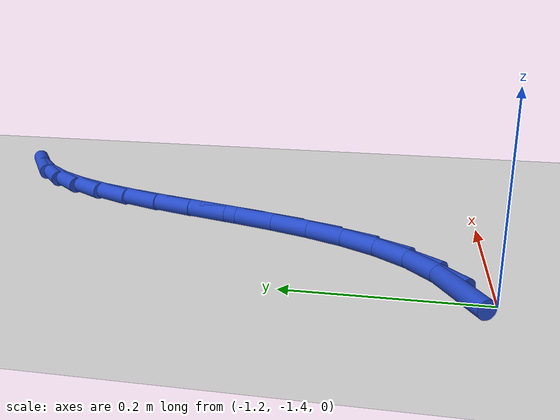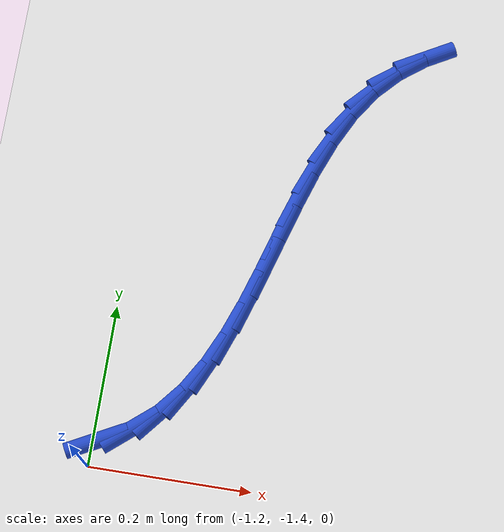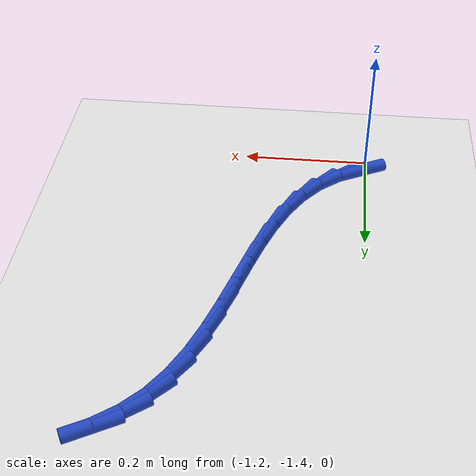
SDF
<sdf version="1.6">
 <world name="default">
  <model name="ground_plane">
   <static>1</static>
   <link name="link">
    <collision name="collision">
     <geometry><plane><normal>0 0 1</normal><size>100 100</size></plane></geometry>
     <surface><friction><ode><mu>100</mu><mu2>50</mu2></ode></friction></surface>
    </collision>
    <visual name="visual">
     <cast_shadows>0</cast_shadows>
     <geometry><plane><normal>0 0 1</normal><size>100 100</size></plane></geometry>
     <material>
      <script><uri>file://media/materials/scripts/gazebo.material</uri><name>Gazebo/WhiteGlow</name></script>
     </material>
    </visual>
   </link>
  </model>
  <model name="line">
   <link name="link_134">
    <pose>-1.1935066883050682 -1.3684177187189428 0.01 0 1.57 0.4818829151417726</pose>
    <collision name="collision">
     <geometry><cylinder><radius>0.01</radius><length>0.08</length></cylinder></geometry>
    </collision>
    <visual name="visual">
     <material>
      <script><name>Gazebo/Blue</name><uri>file://media/materials/scripts/gazebo.material</uri></script>
     </material>
     <geometry><cylinder><radius>0.01</radius><length>0.08</length></cylinder></geometry>
    </visual>
   </link>
   <link name="link_135">
    <pose>-1.156145744813751 -1.3488777043836597 0.01 0 1.57 0.6969530388841583</pose>
    <collision name="collision">
     <geometry><cylinder><radius>0.01</radius><length>0.08</length></cylinder></geometry>
    </collision>
    <visual name="visual">
     <material>
      <script><name>Gazebo/Blue</name><uri>file://media/materials/scripts/gazebo.material</uri></script>
     </material>
     <geometry><cylinder><radius>0.01</radius><length>0.08</length></cylinder></geometry>
    </visual>
   </link>
   <link name="link_136">
    <pose>-1.1247849051375607 -1.3226257627925606 0.01 0 1.57 0.8854524692807012</pose>
    <collision name="collision">
     <geometry><cylinder><radius>0.01</radius><length>0.08</length></cylinder></geometry>
    </collision>
    <visual name="visual">
     <material>
      <script><name>Gazebo/Blue</name><uri>file://media/materials/scripts/gazebo.material</uri></script>
     </material>
     <geometry><cylinder><radius>0.01</radius><length>0.08</length></cylinder></geometry>
    </visual>
   </link>
   <link name="link_137">
    <pose>-1.0986229323773369 -1.2906248450878235 0.01 0 1.57 1.0343437340253292</pose>
    <collision name="collision">
     <geometry><cylinder><radius>0.01</radius><length>0.08</length></cylinder></geometry>
    </collision>
    <visual name="visual">
     <material>
      <script><name>Gazebo/Blue</name><uri>file://media/materials/scripts/gazebo.material</uri></script>
     </material>
     <geometry><cylinder><radius>0.01</radius><length>0.08</length></cylinder></geometry>
    </visual>
   </link>
   <link name="link_138">
    <pose>-1.076775607830689 -1.253883050632244 0.01 0 1.57 1.1437724363634296</pose>
    <collision name="collision">
     <geometry><cylinder><radius>0.01</radius><length>0.08</length></cylinder></geometry>
    </collision>
    <visual name="visual">
     <material>
      <script><name>Gazebo/Blue</name><uri>file://media/materials/scripts/gazebo.material</uri></script>
     </material>
     <geometry><cylinder><radius>0.01</radius><length>0.08</length></cylinder></geometry>
    </visual>
   </link>
   <link name="link_139">
    <pose>-1.0583587127952279 -1.213408478788615 0.01 0 1.57 1.2187199494065142</pose>
    <collision name="collision">
     <geometry><cylinder><radius>0.01</radius><length>0.08</length></cylinder></geometry>
    </collision>
    <visual name="visual">
     <material>
      <script><name>Gazebo/Blue</name><uri>file://media/materials/scripts/gazebo.material</uri></script>
     </material>
     <geometry><cylinder><radius>0.01</radius><length>0.08</length></cylinder></geometry>
    </visual>
   </link>
   <link name="link_140">
    <pose>-1.042488028568563 -1.170209228919731 0.01 0 1.57 1.2644165470563</pose>
    <collision name="collision">
     <geometry><cylinder><radius>0.01</radius><length>0.08</length></cylinder></geometry>
    </collision>
    <visual name="visual">
     <material>
      <script><name>Gazebo/Blue</name><uri>file://media/materials/scripts/gazebo.material</uri></script>
     </material>
     <geometry><cylinder><radius>0.01</radius><length>0.08</length></cylinder></geometry>
    </visual>
   </link>
   <link name="link_141">
    <pose>-1.0282793364483047 -1.1252934003883852 0.01 0 1.57 1.2845027317696327</pose>
    <collision name="collision">
     <geometry><cylinder><radius>0.01</radius><length>0.08</length></cylinder></geometry>
    </collision>
    <visual name="visual">
     <material>
      <script><name>Gazebo/Blue</name><uri>file://media/materials/scripts/gazebo.material</uri></script>
     </material>
     <geometry><cylinder><radius>0.01</radius><length>0.08</length></cylinder></geometry>
    </visual>
   </link>
   <link name="link_142">
    <pose>-1.0148484177320618 -1.0796690925573706 0.01 0 1.57 1.280555310299167</pose>
    <collision name="collision">
     <geometry><cylinder><radius>0.01</radius><length>0.08</length></cylinder></geometry>
    </collision>
    <visual name="visual">
     <material>
      <script><name>Gazebo/Blue</name><uri>file://media/materials/scripts/gazebo.material</uri></script>
     </material>
     <geometry><cylinder><radius>0.01</radius><length>0.08</length></cylinder></geometry>
    </visual>
   </link>
   <link name="link_143">
    <pose>-1.0013110537174457 -1.034344404789483 0.01 0 1.57 1.251999014234306</pose>
    <collision name="collision">
     <geometry><cylinder><radius>0.01</radius><length>0.08</length></cylinder></geometry>
    </collision>
    <visual name="visual">
     <material>
      <script><name>Gazebo/Blue</name><uri>file://media/materials/scripts/gazebo.material</uri></script>
     </material>
     <geometry><cylinder><radius>0.01</radius><length>0.08</length></cylinder></geometry>
    </visual>
   </link>
   <link name="link_144">
    <pose>-0.986783025702066 -0.9903274364475153 0.01 0 1.57 1.1960407316285244</pose>
    <collision name="collision">
     <geometry><cylinder><radius>0.01</radius><length>0.08</length></cylinder></geometry>
    </collision>
    <visual name="visual">
     <material>
      <script><name>Gazebo/Blue</name><uri>file://media/materials/scripts/gazebo.material</uri></script>
     </material>
     <geometry><cylinder><radius>0.01</radius><length>0.08</length></cylinder></geometry>
    </visual>
   </link>
   <link name="link_145">
    <pose>-0.9703801149835324 -0.9486262868942615 0.01 0 1.57 1.107703441559484</pose>
    <collision name="collision">
     <geometry><cylinder><radius>0.01</radius><length>0.08</length></cylinder></geometry>
    </collision>
    <visual name="visual">
     <material>
      <script><name>Gazebo/Blue</name><uri>file://media/materials/scripts/gazebo.material</uri></script>
     </material>
     <geometry><cylinder><radius>0.01</radius><length>0.08</length></cylinder></geometry>
    </visual>
   </link>
   <link name="link_146">
    <pose>-0.9512181028594557 -0.9102490554925156 0.01 0 1.57 0.9805901595662788</pose>
    <collision name="collision">
     <geometry><cylinder><radius>0.01</radius><length>0.08</length></cylinder></geometry>
    </collision>
    <visual name="visual">
     <material>
      <script><name>Gazebo/Blue</name><uri>file://media/materials/scripts/gazebo.material</uri></script>
     </material>
     <geometry><cylinder><radius>0.01</radius><length>0.08</length></cylinder></geometry>
    </visual>
   </link>
   <link name="link_147">
    <pose>-0.9284127706274449 -0.8762038416050711 0.01 0 1.57 0.8158689572984239</pose>
    <collision name="collision">
     <geometry><cylinder><radius>0.01</radius><length>0.08</length></cylinder></geometry>
    </collision>
    <visual name="visual">
     <material>
      <script><name>Gazebo/Blue</name><uri>file://media/materials/scripts/gazebo.material</uri></script>
     </material>
     <geometry><cylinder><radius>0.01</radius><length>0.08</length></cylinder></geometry>
    </visual>
   </link>
   <link name="link_148">
    <pose>-0.9012349291373666 -0.8473171400719565 0.01 0 1.57 0.6520614709479935</pose>
    <collision name="collision">
     <geometry><cylinder><radius>0.01</radius><length>0.08</length></cylinder></geometry>
    </collision>
    <visual name="visual">
     <material>
      <script><name>Gazebo/Blue</name><uri>file://media/materials/scripts/gazebo.material</uri></script>
     </material>
     <geometry><cylinder><radius>0.01</radius><length>0.08</length></cylinder></geometry>
    </visual>
   </link>
   <link name="link_149">
    <pose>-0.8698559708409812 -0.8233604875678542 0.01 0 1.57 0.5102239959482131</pose>
    <collision name="collision">
     <geometry><cylinder><radius>0.01</radius><length>0.08</length></cylinder></geometry>
    </collision>
    <visual name="visual">
     <material>
      <script><name>Gazebo/Blue</name><uri>file://media/materials/scripts/gazebo.material</uri></script>
     </material>
     <geometry><cylinder><radius>0.01</radius><length>0.08</length></cylinder></geometry>
    </visual>
   </link>
  </model>
 </world>
</sdf>
